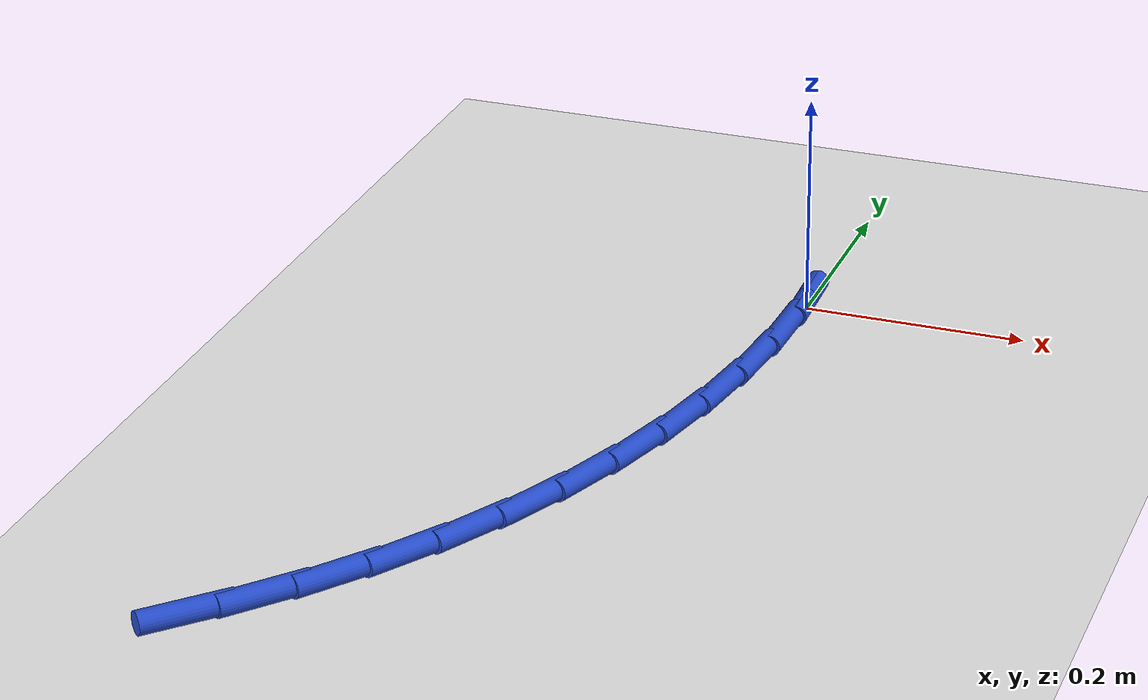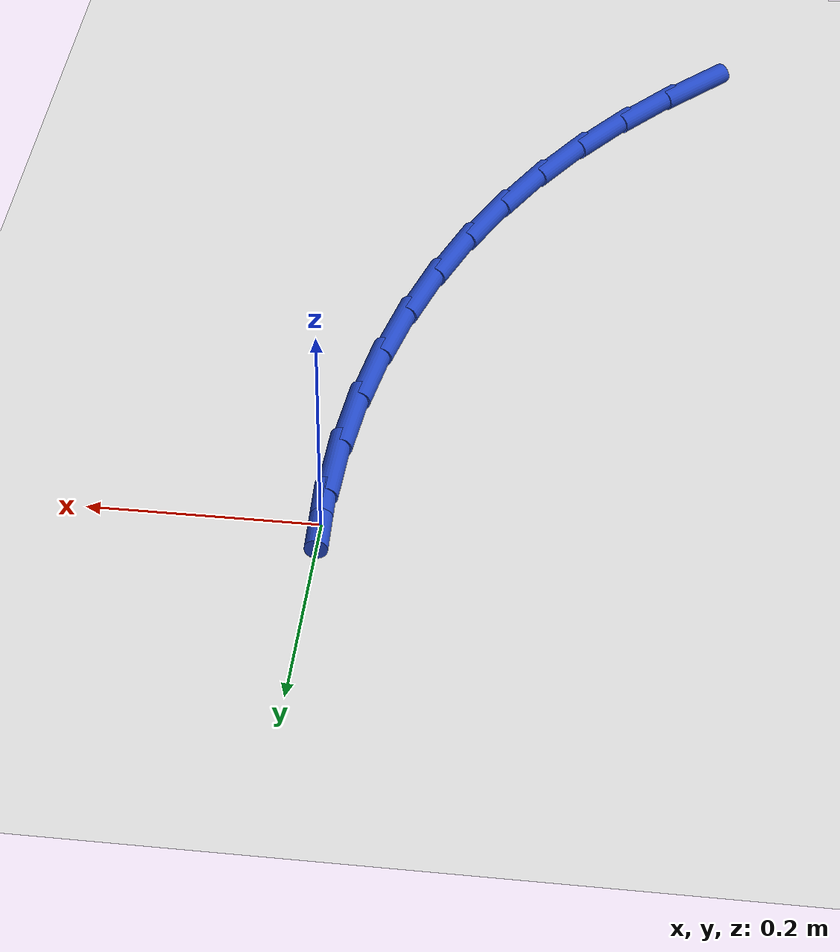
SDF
<sdf version="1.6">
 <world name="default">
  <model name="ground_plane">
   <static>1</static>
   <link name="link">
    <collision name="collision">
     <geometry><plane><normal>0 0 1</normal><size>100 100</size></plane></geometry>
     <surface><friction><ode><mu>100</mu><mu2>50</mu2></ode></friction></surface>
    </collision>
    <visual name="visual">
     <cast_shadows>0</cast_shadows>
     <geometry><plane><normal>0 0 1</normal><size>100 100</size></plane></geometry>
     <material>
      <script><uri>file://media/materials/scripts/gazebo.material</uri><name>Gazebo/WhiteGlow</name></script>
     </material>
    </visual>
   </link>
  </model>
  <model name="line">
   <link name="link_0">
    <pose>5.204170427930421e-17 2.7755575615628914e-17 0.01 0 1.57 -1.5350005418564983</pose>
    <collision name="collision">
     <geometry><cylinder><radius>0.01</radius><length>0.08</length></cylinder></geometry>
    </collision>
    <visual name="visual">
     <material>
      <script><name>Gazebo/Blue</name><uri>file://media/materials/scripts/gazebo.material</uri></script>
     </material>
     <geometry><cylinder><radius>0.01</radius><length>0.08</length></cylinder></geometry>
    </visual>
   </link>
   <link name="link_98">
    <pose>-0.2813518015716654 -0.6851567227927569 0.01 0 1.57 0.8008230505286033</pose>
    <collision name="collision">
     <geometry><cylinder><radius>0.01</radius><length>0.08</length></cylinder></geometry>
    </collision>
    <visual name="visual">
     <material>
      <script><name>Gazebo/Blue</name><uri>file://media/materials/scripts/gazebo.material</uri></script>
     </material>
     <geometry><cylinder><radius>0.01</radius><length>0.08</length></cylinder></geometry>
    </visual>
   </link>
   <link name="link_99">
    <pose>-0.23769001645241822 -0.6401267691030481 0.01 0 1.57 0.8640712574586662</pose>
    <collision name="collision">
     <geometry><cylinder><radius>0.01</radius><length>0.08</length></cylinder></geometry>
    </collision>
    <visual name="visual">
     <material>
      <script><name>Gazebo/Blue</name><uri>file://media/materials/scripts/gazebo.material</uri></script>
     </material>
     <geometry><cylinder><radius>0.01</radius><length>0.08</length></cylinder></geometry>
    </visual>
   </link>
   <link name="link_100">
    <pose>-0.19710672930052697 -0.592597019171584 0.01 0 1.57 0.9335547518784536</pose>
    <collision name="collision">
     <geometry><cylinder><radius>0.01</radius><length>0.08</length></cylinder></geometry>
    </collision>
    <visual name="visual">
     <material>
      <script><name>Gazebo/Blue</name><uri>file://media/materials/scripts/gazebo.material</uri></script>
     </material>
     <geometry><cylinder><radius>0.01</radius><length>0.08</length></cylinder></geometry>
    </visual>
   </link>
   <link name="link_101">
    <pose>-0.1599522187234726 -0.5424061984524332 0.01 0 1.57 1.0076897998766108</pose>
    <collision name="collision">
     <geometry><cylinder><radius>0.01</radius><length>0.08</length></cylinder></geometry>
    </collision>
    <visual name="visual">
     <material>
      <script><name>Gazebo/Blue</name><uri>file://media/materials/scripts/gazebo.material</uri></script>
     </material>
     <geometry><cylinder><radius>0.01</radius><length>0.08</length></cylinder></geometry>
    </visual>
   </link>
   <link name="link_102">
    <pose>-0.1265296989871007 -0.489462617520877 0.01 0 1.57 1.0807434786292127</pose>
    <collision name="collision">
     <geometry><cylinder><radius>0.01</radius><length>0.08</length></cylinder></geometry>
    </collision>
    <visual name="visual">
     <material>
      <script><name>Gazebo/Blue</name><uri>file://media/materials/scripts/gazebo.material</uri></script>
     </material>
     <geometry><cylinder><radius>0.01</radius><length>0.08</length></cylinder></geometry>
    </visual>
   </link>
   <link name="link_103">
    <pose>-0.09693377332084413 -0.43398302055079757 0.01 0 1.57 1.1513848758286354</pose>
    <collision name="collision">
     <geometry><cylinder><radius>0.01</radius><length>0.08</length></cylinder></geometry>
    </collision>
    <visual name="visual">
     <material>
      <script><name>Gazebo/Blue</name><uri>file://media/materials/scripts/gazebo.material</uri></script>
     </material>
     <geometry><cylinder><radius>0.01</radius><length>0.08</length></cylinder></geometry>
    </visual>
   </link>
   <link name="link_104">
    <pose>-0.07120126540780822 -0.3762695793794672 0.01 0 1.57 1.2199074102075833</pose>
    <collision name="collision">
     <geometry><cylinder><radius>0.01</radius><length>0.08</length></cylinder></geometry>
    </collision>
    <visual name="visual">
     <material>
      <script><name>Gazebo/Blue</name><uri>file://media/materials/scripts/gazebo.material</uri></script>
     </material>
     <geometry><cylinder><radius>0.01</radius><length>0.08</length></cylinder></geometry>
    </visual>
   </link>
   <link name="link_105">
    <pose>-0.04936899684179293 -0.31662446893322227 0.01 0 1.57 1.2866495860984595</pose>
    <collision name="collision">
     <geometry><cylinder><radius>0.01</radius><length>0.08</length></cylinder></geometry>
    </collision>
    <visual name="visual">
     <material>
      <script><name>Gazebo/Blue</name><uri>file://media/materials/scripts/gazebo.material</uri></script>
     </material>
     <geometry><cylinder><radius>0.01</radius><length>0.08</length></cylinder></geometry>
    </visual>
   </link>
   <link name="link_106">
    <pose>-0.031473789216597145 -0.25534986413839683 0.01 0 1.57 1.3519784153471899</pose>
    <collision name="collision">
     <geometry><cylinder><radius>0.01</radius><length>0.08</length></cylinder></geometry>
    </collision>
    <visual name="visual">
     <material>
      <script><name>Gazebo/Blue</name><uri>file://media/materials/scripts/gazebo.material</uri></script>
     </material>
     <geometry><cylinder><radius>0.01</radius><length>0.08</length></cylinder></geometry>
    </visual>
   </link>
   <link name="link_107">
    <pose>-0.017552464126020698 -0.19274793992132727 0.01 0 1.57 1.4162768880386603</pose>
    <collision name="collision">
     <geometry><cylinder><radius>0.01</radius><length>0.08</length></cylinder></geometry>
    </collision>
    <visual name="visual">
     <material>
      <script><name>Gazebo/Blue</name><uri>file://media/materials/scripts/gazebo.material</uri></script>
     </material>
     <geometry><cylinder><radius>0.01</radius><length>0.08</length></cylinder></geometry>
    </visual>
   </link>
   <link name="link_108">
    <pose>-0.007641843163862662 -0.12912087120834742 0.01 0 1.57 1.4799346648602654</pose>
    <collision name="collision">
     <geometry><cylinder><radius>0.01</radius><length>0.08</length></cylinder></geometry>
    </collision>
    <visual name="visual">
     <material>
      <script><name>Gazebo/Blue</name><uri>file://media/materials/scripts/gazebo.material</uri></script>
     </material>
     <geometry><cylinder><radius>0.01</radius><length>0.08</length></cylinder></geometry>
    </visual>
   </link>
   <link name="link_109">
    <pose>-0.0017787479239226595 -0.06477083292579373 0.01 0 1.57 1.5433410527807716</pose>
    <collision name="collision">
     <geometry><cylinder><radius>0.01</radius><length>0.08</length></cylinder></geometry>
    </collision>
    <visual name="visual">
     <material>
      <script><name>Gazebo/Blue</name><uri>file://media/materials/scripts/gazebo.material</uri></script>
     </material>
     <geometry><cylinder><radius>0.01</radius><length>0.08</length></cylinder></geometry>
    </visual>
   </link>
   <link name="link_110">
    <pose>4.5102810375396984e-17 -8.326672684688674e-17 0.01 0 1.57 -1.5347133548091798</pose>
    <collision name="collision">
     <geometry><cylinder><radius>0.01</radius><length>0.08</length></cylinder></geometry>
    </collision>
    <visual name="visual">
     <material>
      <script><name>Gazebo/Blue</name><uri>file://media/materials/scripts/gazebo.material</uri></script>
     </material>
     <geometry><cylinder><radius>0.01</radius><length>0.08</length></cylinder></geometry>
    </visual>
   </link>
  </model>
 </world>
</sdf>
